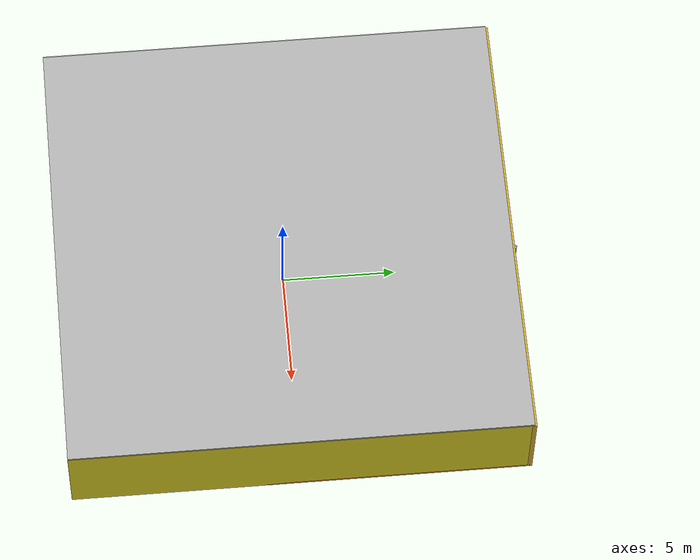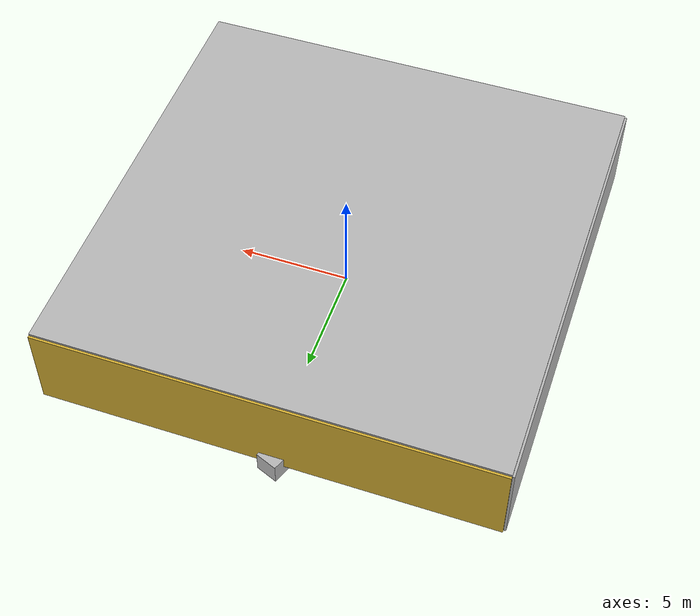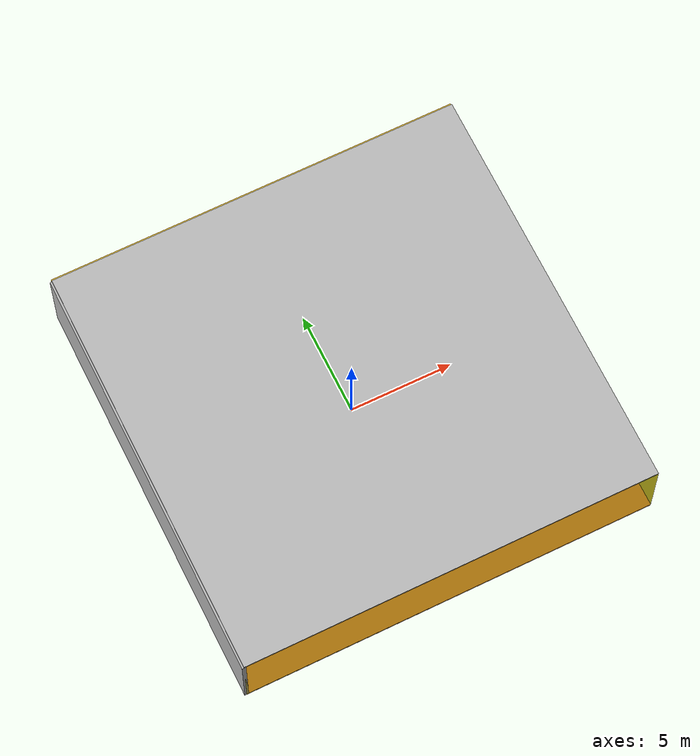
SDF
<sdf version="1.4">
 <world name="default">
  <physics type="ode">
   <max_step_size>0.001</max_step_size>
   <real_time_factor>1</real_time_factor>
   <real_time_update_rate>1000</real_time_update_rate>
   <gravity>0 0 -9.8</gravity>
  </physics>
  <scene><ambient>0.4 0.4 0.4 1</ambient><background>0.7 0.7 0.7 1</background><shadows>1</shadows></scene>
  <model name="Surrounding">
   <static>1</static>
   <link name="Ceiling">
    <collision name="Ceiling_Collision"><geometry><box><size>20 20 0.1</size></box></geometry></collision>
    <visual name="Ceiling_Visual">
     <geometry><box><size>20 20 0.1</size></box></geometry>
     <material>
      <script><uri>file://media/materials/scripts/gazebo.material</uri><name>Gazebo/LightOn</name></script>
     </material>
    </visual>
    <pose>0 0 4.05 0 0 0</pose>
   </link>
   <link name="Wall_South">
    <collision name="Wall_South_Collision">
     <geometry><box><size>20 0 4</size></box></geometry>
     <pose>0 0 2 0 -0 0</pose>
    </collision>
    <visual name="Wall_South_Visual">
     <pose>0 0 2 0 -0 0</pose>
     <geometry><box><size>20 0 4</size></box></geometry>
     <material>
      <script>
       <uri>file://media/materials/scripts/gazebo.material</uri>
       <name>Gazebo/YellowTransparent</name>
      </script>
     </material>
    </visual>
    <velocity_decay><linear>0</linear><angular>0</angular></velocity_decay>
    <pose>0 -10 0 0 -0 0</pose>
   </link>
   <link name="Wall_East">
    <collision name="Wall_21_Collision">
     <geometry><box><size>20 0 4</size></box></geometry>
     <pose>0 0 2 0 -0 0</pose>
    </collision>
    <visual name="Wall_21_Visual">
     <pose>0 0 2 0 -0 0</pose>
     <geometry><box><size>20 0 4</size></box></geometry>
     <material>
      <script><uri>file://media/materials/scripts/gazebo.material</uri><name>Gazebo/Yellow</name></script>
     </material>
    </visual>
    <velocity_decay><linear>0</linear><angular>0</angular></velocity_decay>
    <pose>10 0 0 0 -0 1.5708</pose>
   </link>
   <link name="Wall_North">
    <collision name="Wall_22_Collision">
     <geometry><box><size>20 0.2 4</size></box></geometry>
     <pose>0 0 2 0 -0 0</pose>
    </collision>
    <visual name="Wall_22_Visual">
     <pose>0 0 2 0 -0 0</pose>
     <geometry><box><size>20 0.2 4</size></box></geometry>
     <material>
      <script><uri>file://media/materials/scripts/gazebo.material</uri><name>Gazebo/Gold</name></script>
     </material>
    </visual>
    <velocity_decay><linear>0</linear><angular>0</angular></velocity_decay>
    <pose>0 10 0 0 -0 0</pose>
   </link>
   <link name="Wall_West">
    <collision name="Wall_23_Collision">
     <geometry><box><size>20 0.2 4</size></box></geometry>
     <pose>0 0 2 0 -0 0</pose>
    </collision>
    <visual name="Wall_23_Visual">
     <pose>0 0 2 0 -0 0</pose>
     <geometry><box><size>20 0.2 4</size></box></geometry>
     <material>
      <script><uri>file://media/materials/scripts/gazebo.material</uri><name>Gazebo/LightOn</name></script>
     </material>
    </visual>
    <velocity_decay><linear>0</linear><angular>0</angular></velocity_decay>
    <pose>-10 0 0 0 0 -1.5708</pose>
   </link>
   <link name="Ground_link">
    <collision name="collision">
     <pose>0 0 .05 0 -0 0</pose>
     <geometry><box><size>20 20 0.1</size></box></geometry>
    </collision>
    <visual name="visual">
     <pose>0 0 .05 0 -0 0</pose>
     <geometry><box><size>20 20 0.1</size></box></geometry>
     <material>
      <script><uri>file://media/materials/scripts/gazebo.material</uri><name>Gazebo/Orange</name></script>
     </material>
    </visual>
   </link>
   <static>1</static>
  </model>
  <spherical_coordinates>
   <surface_model>EARTH_WGS84</surface_model>
   <latitude_deg>0</latitude_deg>
   <longitude_deg>0</longitude_deg>
   <elevation>0</elevation>
   <heading_deg>0</heading_deg>
  </spherical_coordinates>
  <light name="lightball_0" type="diffuse">
   <diffuse>0.8 0.8 0.8 1</diffuse>
   <specular>0.2 0.2 0.2 1</specular>
   <attenuation>
    <range>100</range>
    <constant>0.7</constant>
    <linear>0.01</linear>
    <quadratic>0.001</quadratic>
   </attenuation>
   <direction>-0.5 0.1 -0.9</direction>
   <pose>-1.29082272462 3.86985470002 2.51496324621 0 0 0</pose>
  </light>
  <light name="lightball_1" type="diffuse">
   <diffuse>0.8 0.8 0.8 1</diffuse>
   <specular>0.2 0.2 0.2 1</specular>
   <attenuation>
    <range>100</range>
    <constant>0.7</constant>
    <linear>0.01</linear>
    <quadratic>0.001</quadratic>
   </attenuation>
   <direction>-0.5 0.1 -0.9</direction>
   <pose>-7.57704825688 5.66028598858 1.51254189606 0 0 0</pose>
  </light>
  <light name="lightball_2" type="diffuse">
   <diffuse>0.8 0.8 0.8 1</diffuse>
   <specular>0.2 0.2 0.2 1</specular>
   <attenuation>
    <range>100</range>
    <constant>0.7</constant>
    <linear>0.01</linear>
    <quadratic>0.001</quadratic>
   </attenuation>
   <direction>-0.5 0.1 -0.9</direction>
   <pose>3.913880992 0.0234225291215 3.02543065635 0 0 0</pose>
  </light>
  <light name="lightball_3" type="diffuse">
   <diffuse>0.8 0.8 0.8 1</diffuse>
   <specular>0.2 0.2 0.2 1</specular>
   <attenuation>
    <range>100</range>
    <constant>0.7</constant>
    <linear>0.01</linear>
    <quadratic>0.001</quadratic>
   </attenuation>
   <direction>-0.5 0.1 -0.9</direction>
   <pose>-7.79281237192 8.5791949719 0.763527140399 0 0 0</pose>
  </light>
  <light name="lightball_4" type="diffuse">
   <diffuse>0.8 0.8 0.8 1</diffuse>
   <specular>0.2 0.2 0.2 1</specular>
   <attenuation>
    <range>100</range>
    <constant>0.7</constant>
    <linear>0.01</linear>
    <quadratic>0.001</quadratic>
   </attenuation>
   <direction>-0.5 0.1 -0.9</direction>
   <pose>7.80869557243 0.296917791155 1.30997939442 0 0 0</pose>
  </light>
  <light name="lightball_5" type="diffuse">
   <diffuse>0.8 0.8 0.8 1</diffuse>
   <specular>0.2 0.2 0.2 1</specular>
   <attenuation>
    <range>100</range>
    <constant>0.7</constant>
    <linear>0.01</linear>
    <quadratic>0.001</quadratic>
   </attenuation>
   <direction>-0.5 0.1 -0.9</direction>
   <pose>4.23297076256 -1.88722954252 2.95140766233 0 0 0</pose>
  </light>
  <light name="lightball_6" type="diffuse">
   <diffuse>0.8 0.8 0.8 1</diffuse>
   <specular>0.2 0.2 0.2 1</specular>
   <attenuation>
    <range>100</range>
    <constant>0.7</constant>
    <linear>0.01</linear>
    <quadratic>0.001</quadratic>
   </attenuation>
   <direction>-0.5 0.1 -0.9</direction>
   <pose>2.78887469379 0.256072149182 1.46160174714 0 0 0</pose>
  </light>
  <light name="lightball_7" type="diffuse">
   <diffuse>0.8 0.8 0.8 1</diffuse>
   <specular>0.2 0.2 0.2 1</specular>
   <attenuation>
    <range>100</range>
    <constant>0.7</constant>
    <linear>0.01</linear>
    <quadratic>0.001</quadratic>
   </attenuation>
   <direction>-0.5 0.1 -0.9</direction>
   <pose>-6.05630820551 2.77183950968 2.88730033635 0 0 0</pose>
  </light>
  <light name="lightball_8" type="diffuse">
   <diffuse>0.8 0.8 0.8 1</diffuse>
   <specular>0.2 0.2 0.2 1</specular>
   <attenuation>
    <range>100</range>
    <constant>0.7</constant>
    <linear>0.01</linear>
    <quadratic>0.001</quadratic>
   </attenuation>
   <direction>-0.5 0.1 -0.9</direction>
   <pose>6.6511407332 3.32368912 3.64213078478 0 0 0</pose>
  </light>
  <light name="lightball_9" type="diffuse">
   <diffuse>0.8 0.8 0.8 1</diffuse>
   <specular>0.2 0.2 0.2 1</specular>
   <attenuation>
    <range>100</range>
    <constant>0.7</constant>
    <linear>0.01</linear>
    <quadratic>0.001</quadratic>
   </attenuation>
   <direction>-0.5 0.1 -0.9</direction>
   <pose>2.93133001078 -9.54271958511 1.00837114275 0 0 0</pose>
  </light>
  <light name="lightball_10" type="diffuse">
   <diffuse>0.8 0.8 0.8 1</diffuse>
   <specular>0.2 0.2 0.2 1</specular>
   <attenuation>
    <range>100</range>
    <constant>0.7</constant>
    <linear>0.01</linear>
    <quadratic>0.001</quadratic>
   </attenuation>
   <direction>-0.5 0.1 -0.9</direction>
   <pose>1.44935317531 0.302986621494 1.97811703019 0 0 0</pose>
  </light>
  <include><uri>model://cabinet</uri><pose>-8.40924180265 2.56014489719 0 0 0 2.99250979143</pose></include>
  <include>
   <uri>model://construction_cone</uri>
   <pose>-4.72419785704 -4.66316781896 0 0 0 2.51287803988</pose>
  </include>
  <include>
   <uri>model://textured_shapes</uri>
   <pose>-0.905727192263 8.54535929414 0 0 0 2.76273495463</pose>
  </include>
  <include>
   <uri>model://robocup_3Dsim_goal</uri>
   <pose>1.92201938126 7.85843812186 0 0 0 1.84212633929</pose>
  </include>
  <include>
   <uri>model://textured_shapes</uri>
   <pose>6.66694880665 5.34971891488 0 0 0 3.03453683151</pose>
  </include>
 </world>
</sdf>

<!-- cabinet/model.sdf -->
<sdf version="1.5">
  <model name="cabinet">
    <static>true</static>
    <link name="cabinet_bottom_plate">
      <inertial>
        <pose>0 0 -1 0 0 0</pose>
        <inertia>
          <ixx>2.050000</ixx>
          <ixy>0</ixy>
          <ixz>0</ixz>
          <iyy>2.050000</iyy>
          <iyz>0</iyz>
          <izz>2.050000</izz>
        </inertia>
        <mass>25.000000</mass>
      </inertial>
      <collision name="cabinet_bottom_plate_geom">
        <pose>0 0 0.010000 0 0 0</pose>
        <geometry>
          <box>
            <size>0.450000 0.450000 0.020000</size>
          </box>
        </geometry>
      </collision>
      <visual name="cabinet_bottom_plate_geom_visual">
        <pose>0 0 0.010000 0 0 0</pose>
        <geometry>
          <box>
            <size>0.450000 0.450000 0.020000</size>
          </box>
        </geometry>
        <material>
          <script>
            <uri>model://media/materials/scripts/gazebo.material</uri>
            <name>Gazebo/Wood</name>
          </script>
        </material>
      </visual>
      <collision name="cabinet_bottom_plate_geom_cabinet_back_plate">
        <pose>0.235000 0 0.510000 0 0 0</pose>
        <geometry>
          <box>
            <size>0.020000 0.450000 1.020000</size>
          </box>
        </geometry>
      </collision>
      <visual name="cabinet_bottom_plate_geom_cabinet_back_plate_visual">
        <pose>0.235000 0 0.510000 0 0 0</pose>
        <geometry>
          <box>
            <size>0.020000 0.450000 1.020000</size>
          </box>
        </geometry>
        <material>
          <script>
            <uri>model://media/materials/scripts/gazebo.material</uri>
            <name>Gazebo/Wood</name>
          </script>
        </material>
      </visual>
      <collision name="cabinet_bottom_plate_geom_cabinet_left_plate">
        <pose>0 0.235000 0.510000 0 0 0</pose>
        <geometry>
          <box>
            <size>0.450000 0.020000 1.020000</size>
          </box>
        </geometry>
      </collision>
      <visual name="cabinet_bottom_plate_geom_cabinet_left_plate_visual">
        <pose>0 0.235000 0.510000 0 0 0</pose>
        <geometry>
          <box>
            <size>0.450000 0.020000 1.020000</size>
          </box>
        </geometry>
        <material>
          <script>
            <uri>model://media/materials/scripts/gazebo.material</uri>
            <name>Gazebo/Wood</name>
          </script>
        </material>
      </visual>
      <collision name="cabinet_bottom_plate_geom_cabinet_middle_plate">
        <pose>0 0 0.510000 0 0 0</pose>
        <geometry>
          <box>
            <size>0.450000 0.450000 0.020000</size>
          </box>
        </geometry>
      </collision>
      <visual name="cabinet_bottom_plate_geom_cabinet_middle_plate_visual">
        <pose>0 0 0.510000 0 0 0</pose>
        <geometry>
          <box>
            <size>0.450000 0.450000 0.020000</size>
          </box>
        </geometry>
        <material>
          <script>
            <uri>model://media/materials/scripts/gazebo.material</uri>
            <name>Gazebo/Wood</name>
          </script>
        </material>
      </visual>
      <collision name="cabinet_bottom_plate_geom_cabinet_right_plate">
        <pose>0 -0.235000 0.510000 0 0 0</pose>
        <geometry>
          <box>
            <size>0.450000 0.020000 1.020000</size>
          </box>
        </geometry>
      </collision>
      <visual name="cabinet_bottom_plate_geom_cabinet_right_plate_visual">
        <pose>0 -0.235000 0.510000 0 0 0</pose>
        <geometry>
          <box>
            <size>0.450000 0.020000 1.020000</size>
          </box>
        </geometry>
        <material>
          <script>
            <uri>model://media/materials/scripts/gazebo.material</uri>
            <name>Gazebo/Wood</name>
          </script>
        </material>
      </visual>
      <collision name="cabinet_bottom_plate_geom_cabinet_top_plate">
        <pose>0 0 1.010000 0 0 0</pose>
        <geometry>
          <box>
            <size>0.450000 0.450000 0.020000</size>
          </box>
        </geometry>
      </collision>
      <visual name="cabinet_bottom_plate_geom_cabinet_top_plate_visual">
        <pose>0 0 1.010000 0 0 0</pose>
        <geometry>
          <box>
            <size>0.450000 0.450000 0.020000</size>
          </box>
        </geometry>
        <material>
          <script>
            <uri>model://media/materials/scripts/gazebo.material</uri>
            <name>Gazebo/Wood</name>
          </script>
        </material>
      </visual>
    </link>
  </model>
</sdf>

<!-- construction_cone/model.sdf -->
<sdf version="1.5">
  <model name="Construction Cone">
    <link name="link">
      <collision name="collision">
        <geometry>
          <mesh>
            <scale>10 10 10</scale>
            <uri>file://isr-testbed/construction_cone/meshes/construction_cone.dae</uri>
          </mesh>
        </geometry>
      </collision>
      <visual name="visual">
        <geometry>
          <mesh>
            <scale>10 10 10</scale>
            <uri>file://isr-testbed/construction_cone/meshes/construction_cone.dae</uri>
          </mesh>
        </geometry>
      </visual>
    </link>
  </model>
</sdf>

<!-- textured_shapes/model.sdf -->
<sdf version="1.6">
  <model name="textured_shapes">
    <pose>0 0 0.5 0 0 0</pose>
    <link name="box">
      <pose>0 -1.5 0 0 0 0</pose>
      <collision name="collision">
        <geometry>
          <box>
            <size>1 1 1</size>
          </box>
        </geometry>
      </collision>
      <visual name="visual">
        <geometry>
          <box>
            <size>1 1 1</size>
          </box>
        </geometry>
        <material>
          <script>
            <uri>model://../model_source/models/textured_shapes/materials/scripts</uri>
            <uri>model://../model_source/models/textured_shapes/materials/textures</uri>
            <name>TexturedShape/Squares</name>
          </script>
        </material>
      </visual>
    </link>
    <link name="sphere">
      <collision name="collision">
        <geometry>
          <sphere>
            <radius>0.5</radius>
          </sphere>
        </geometry>
      </collision>
      <visual name="visual">
        <geometry>
          <sphere>
            <radius>0.5</radius>
          </sphere>
        </geometry>
        <material>
          <script>
            <uri>model://../model_source/models/textured_shapes/materials/scripts</uri>
            <uri>model://../model_source/models/textured_shapes/materials/textures</uri>
            <name>TexturedShape/Squares</name>
          </script>
        </material>
      </visual>
    </link>
    <link name="cylinder">
      <pose>0 1.5 0 0 0 0</pose>
      <collision name="collision">
        <geometry>
          <cylinder>
            <radius>0.5</radius>
            <length>1</length>
          </cylinder>
        </geometry>
      </collision>
      <visual name="visual">
        <geometry>
          <cylinder>
            <radius>0.5</radius>
            <length>1</length>
          </cylinder>
        </geometry>
        <material>
          <script>
            <uri>model://../model_source/models/textured_shapes/materials/scripts</uri>
            <uri>model://../model_source/models/textured_shapes/materials/textures</uri>
            <name>TexturedShape/Squares</name>
          </script>
        </material>
      </visual>
    </link>
  </model>
</sdf>

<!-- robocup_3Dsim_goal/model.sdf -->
<sdf version="1.5">
  <model name="robocup_3d_goal">
    <static>true</static>
    <link name="left_post">
      <pose>0 1.05 0.45 0 0 0</pose>
      <collision name="collision">
        <geometry>
          <cylinder>
            <radius>0.05</radius>
            <length>0.9</length>
          </cylinder>
        </geometry>
      </collision>
      <visual name="visual">
        <geometry>
          <cylinder>
            <radius>0.05</radius>
            <length>0.9</length>
          </cylinder>
        </geometry>
        <material>
          <script>
            <uri>file://media/materials/scripts/gazebo.material</uri>
            <name>Gazebo/ZincYellow</name>
          </script>
        </material>
      </visual>
    </link>
    <link name="left_support_horiz_lower">
      <pose>0.30 1.05 0.01 0 0 0</pose>
      <collision name="collision">
        <geometry>
          <box>
            <size>0.50 0.02 0.02</size>
          </box>
        </geometry>
      </collision>
      <visual name="visual">
        <geometry>
          <box>
            <size>0.50 0.02 0.02</size>
          </box>
        </geometry>
        <material>
          <script>
            <uri>file://media/materials/scripts/gazebo.material</uri>
            <name>Gazebo/White</name>
          </script>
        </material>
      </visual>
    </link>
    <link name="left_support_horiz_upper">
      <pose>0.30 1.05 0.79 0 0 0</pose>
      <collision name="collision">
        <geometry>
          <box>
            <size>0.50 0.02 0.02</size>
          </box>
        </geometry>
      </collision>
      <visual name="visual">
        <geometry>
          <box>
            <size>0.50 0.02 0.02</size>
          </box>
        </geometry>
        <material>
          <script>
            <uri>file://media/materials/scripts/gazebo.material</uri>
            <name>Gazebo/White</name>
          </script>
        </material>
      </visual>
    </link>
    <link name="left_support_vertical">
      <pose>0.56 1.05 0.4 0 1.5708 0</pose>
      <collision name="collision">
        <geometry>
          <box>
            <size>0.80 0.02 0.02</size>
          </box>
        </geometry>
      </collision>
      <visual name="visual">
        <geometry>
          <box>
            <size>0.80 0.02 0.02</size>
          </box>
        </geometry>
        <material>
          <script>
            <uri>file://media/materials/scripts/gazebo.material</uri>
            <name>Gazebo/White</name>
          </script>
        </material>
      </visual>
    </link>
    <link name="right_support_horiz_lower">
      <pose>0.30 -1.05 0.01 0 0 0</pose>
      <collision name="collision">
        <geometry>
          <box>
            <size>0.50 0.02 0.02</size>
          </box>
        </geometry>
      </collision>
      <visual name="visual">
        <geometry>
          <box>
            <size>0.50 0.02 0.02</size>
          </box>
        </geometry>
        <material>
          <script>
            <uri>file://media/materials/scripts/gazebo.material</uri>
            <name>Gazebo/White</name>
          </script>
        </material>
      </visual>
    </link>
    <link name="right_support_horiz_upper">
      <pose>0.30 -1.05 0.79 0 0 0</pose>
      <collision name="collision">
        <geometry>
          <box>
            <size>0.50 0.02 0.02</size>
          </box>
        </geometry>
      </collision>
      <visual name="visual">
        <geometry>
          <box>
            <size>0.50 0.02 0.02</size>
          </box>
        </geometry>
        <material>
          <script>
            <uri>file://media/materials/scripts/gazebo.material</uri>
            <name>Gazebo/White</name>
          </script>
        </material>
      </visual>
    </link>
    <link name="right_support_vertical">
      <pose>0.56 -1.05 0.4 0 1.5708 0</pose>
      <collision name="collision">
        <geometry>
          <box>
            <size>0.80 0.02 0.02</size>
          </box>
        </geometry>
      </collision>
      <visual name="visual">
        <geometry>
          <box>
            <size>0.80 0.02 0.02</size>
          </box>
        </geometry>
        <material>
          <script>
            <uri>file://media/materials/scripts/gazebo.material</uri>
            <name>Gazebo/White</name>
          </script>
        </material>
      </visual>
    </link>
    <link name="center_support_horiz_lower">
      <pose>0.56 0 0.01 0 1.5708 0</pose>
      <collision name="collision">
        <geometry>
          <box>
            <size>0.02 2.08 0.02</size>
          </box>
        </geometry>
      </collision>
      <visual name="visual">
        <geometry>
          <box>
            <size>0.02 2.08 0.02</size>
          </box>
        </geometry>
        <material>
          <script>
            <uri>file://media/materials/scripts/gazebo.material</uri>
            <name>Gazebo/White</name>
          </script>
        </material>
      </visual>
    </link>
    <link name="center_support_horiz_upper">
      <pose>0.56 0 0.79 0 1.5708 0</pose>
      <collision name="collision">
        <geometry>
          <box>
            <size>0.02 2.08 0.02</size>
          </box>
        </geometry>
      </collision>
      <visual name="visual">
        <geometry>
          <box>
            <size>0.02 2.08 0.02</size>
          </box>
        </geometry>
        <material>
          <script>
            <uri>file://media/materials/scripts/gazebo.material</uri>
            <name>Gazebo/White</name>
          </script>
        </material>
      </visual>
    </link>
    <link name="right_post">
      <pose>0 -1.05 0.45 0 0 0</pose>
      <collision name="collision">
        <geometry>
          <cylinder>
            <radius>0.05</radius>
            <length>0.9</length>
          </cylinder>
        </geometry>
      </collision>
      <visual name="visual">
        <geometry>
          <cylinder>
            <radius>0.05</radius>
            <length>0.9</length>
          </cylinder>
        </geometry>
        <material>
          <script>
            <uri>file://media/materials/scripts/gazebo.material</uri>
            <name>Gazebo/ZincYellow</name>
          </script>
        </material>
      </visual>
    </link>
    <link name="crossbar">
      <pose>0 0 0.85 1.57 1.57 0</pose>
      <collision name="collision">
        <geometry>
          <cylinder>
            <radius>0.05</radius>
            <length>2.0</length>
          </cylinder>
        </geometry>
      </collision>
      <visual name="visual">
        <geometry>
          <cylinder>
            <radius>0.05</radius>
            <length>2.0</length>
          </cylinder>
        </geometry>
        <material>
          <script>
            <uri>file://media/materials/scripts/gazebo.material</uri>
            <name>Gazebo/ZincYellow</name>
          </script>
        </material>
      </visual>
    </link>
    <link name="center_net">
      <pose>0.56 0 0.40 0 0 0</pose>
      <collision name="collision">
        <geometry>
          <box>
            <size>0.01 2.1 0.80</size>
          </box>
        </geometry>
      </collision>
      <visual name="visual">
        <geometry>
          <box>
            <size>0.01 2.1 0.80</size>
          </box>
        </geometry>
        <material>
          <script>
            <uri>model://../model_source/models/robocup09_spl_field/materials/scripts/</uri>
            <uri>model://../model_source/models/robocup09_spl_field/materials/textures/</uri>
            <name>RoboCup/Net</name>
          </script>
        </material>
      </visual>
    </link>
    <link name="left_net">
      <pose>0.30 1.05 0.40 0 0 0</pose>
      <collision name="collision">
        <geometry>
          <box>
            <size>0.50 0.01 0.76</size>
          </box>
        </geometry>
      </collision>
      <visual name="visual">
        <geometry>
          <box>
            <size>0.50 0.01 0.76</size>
          </box>
        </geometry>
        <material>
          <script>
            <uri>model://../model_source/models/robocup09_spl_field/materials/scripts/</uri>
            <uri>model://../model_source/models/robocup09_spl_field/materials/textures/</uri>
            <name>RoboCup/Net</name>
          </script>
        </material>
      </visual>
    </link>
    <link name="right_net">
      <pose>0.30 -1.05 0.40 0 0 0</pose>
      <collision name="collision">
        <geometry>
          <box>
            <size>0.50 0.01 0.76</size>
          </box>
        </geometry>
      </collision>
      <visual name="visual">
        <geometry>
          <box>
            <size>0.50 0.01 0.76</size>
          </box>
        </geometry>
        <material>
          <script>
            <uri>model://../model_source/models/robocup09_spl_field/materials/scripts/</uri>
            <uri>model://../model_source/models/robocup09_spl_field/materials/textures/</uri>
            <name>RoboCup/Net</name>
          </script>
        </material>
      </visual>
    </link>
  </model>
</sdf>
